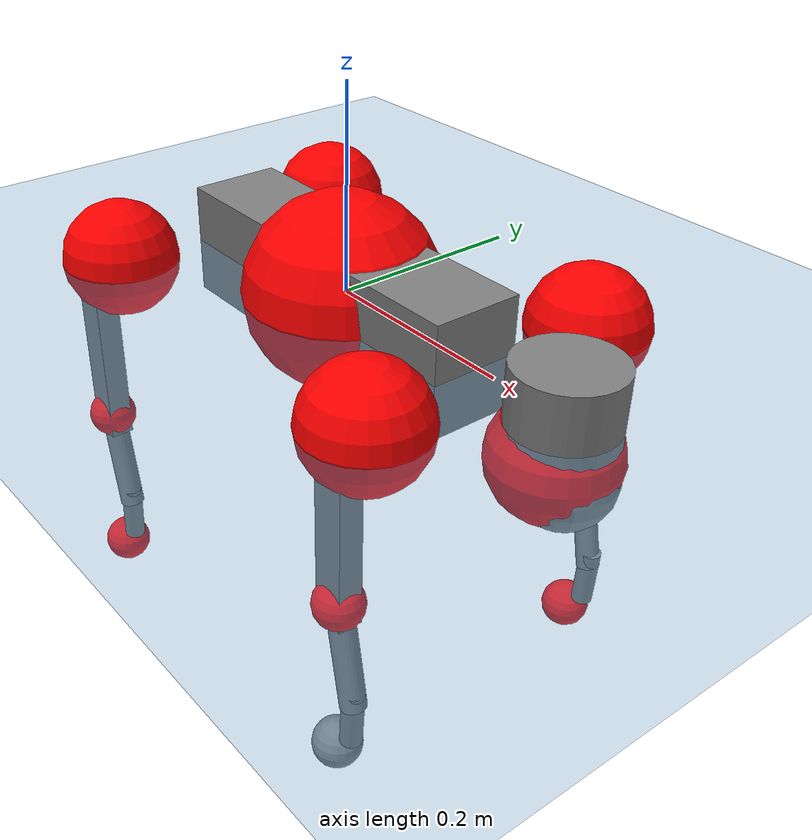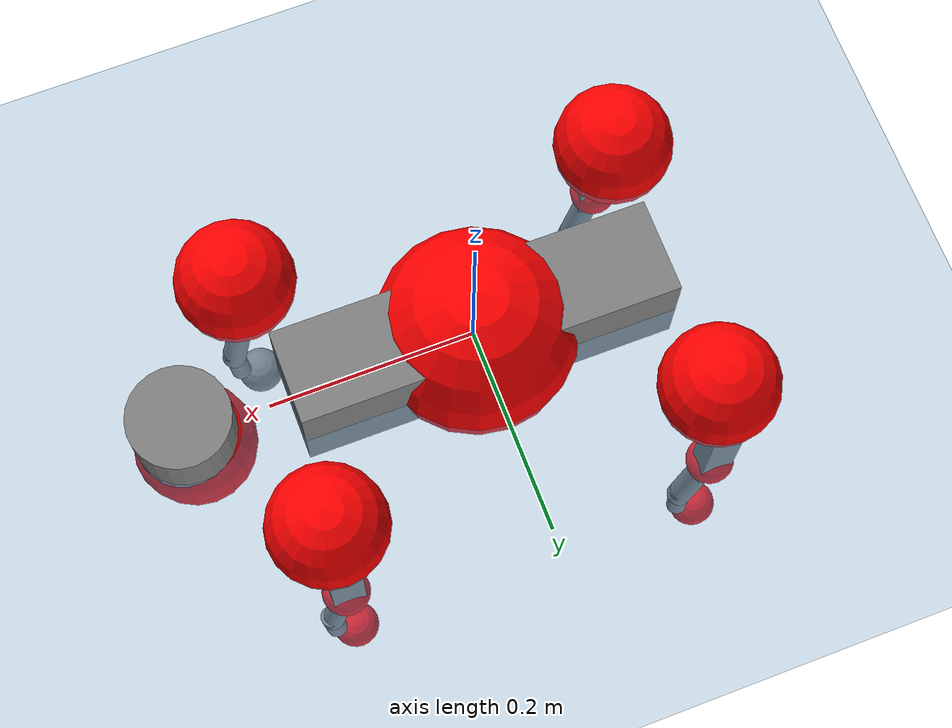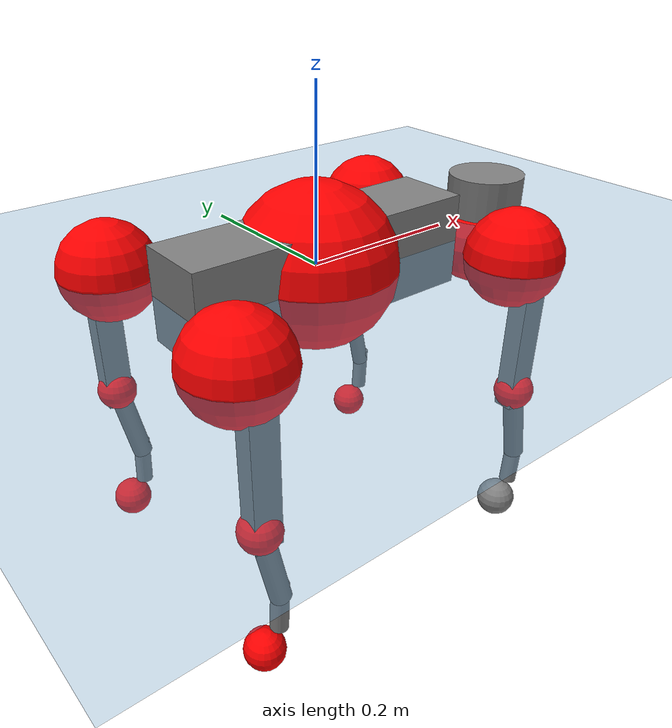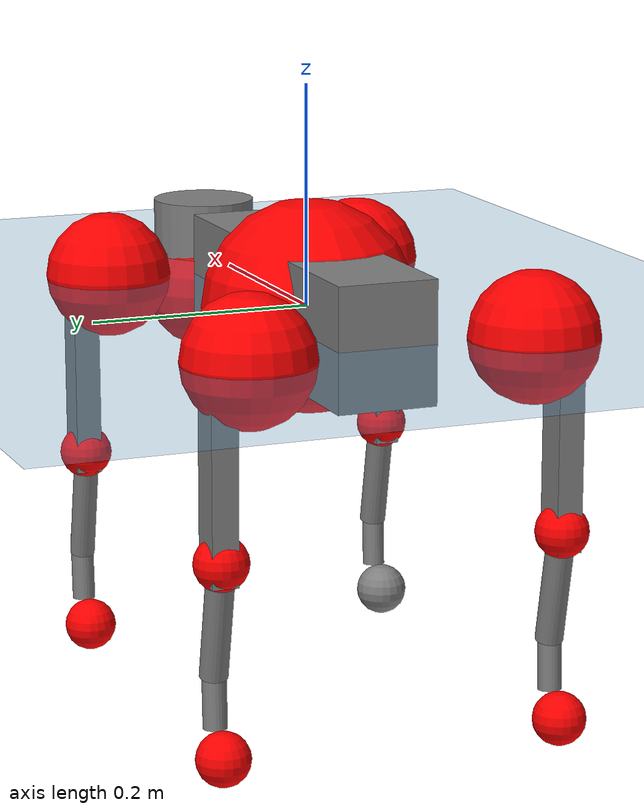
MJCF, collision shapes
<mujoco model="go2">
  <compiler angle="radian" assetdir="assets" balanceinertia="true" inertiafromgeom="false"/>

  <option timestep="0.005" density="1.2" viscosity="2e-05"/>

  <size nkey="1"/>

  <visual>
    <quality shadowsize="8192"/>
    <map shadowclip="0.5"/>
  </visual>

  <default>
    <default class="/">
      <geom contype="0" conaffinity="0" group="1" solref="-1000 -80"/>
      <site size="0.01 0.005 0.005" group="5"/>
      <general forcelimited="true" biastype="affine" gainprm="20" biasprm="0 -20 -0.5"/>
      <default class="go2">
        <joint armature="0.01" damping="0.01" frictionloss="0.2"/>
        <geom condim="1" margin="0.001"/>
        <default class="visual">
          <geom type="mesh" group="2"/>
        </default>
        <default class="collision">
          <geom group="3"/>
          <default class="foot">
            <geom size="0.022 0 0" condim="6" priority="1" friction="0.8 0.02 0.01" solimp="0.015 1 0.022"/>
          </default>
        </default>
        <default class="reward_collision_sphere">
          <geom group="5" rgba="1 0 0 1"/>
        </default>
      </default>
    </default>
  </default>

  <asset>
    <texture type="skybox" colorspace="auto" name="//unnamed_texture_0" builtin="gradient" rgb1="0.95 0.95 0.95" rgb2="0.95 0.95 0.95" width="100" height="600"/>
    <texture type="2d" colorspace="auto" name="texplane" builtin="checker" rgb1="0.345 0.575 0.748" rgb2="0.345 0.575 0.748" markrgb="1 1 1" width="512" height="512"/>
    <material name="MatPlane" class="/" texture="texplane" texuniform="true" texrepeat="2 2" specular="0.9"/>
    <material name="metal" class="/" rgba="0.9 0.95 0.95 1"/>
    <material name="black" class="/" rgba="0 0 0 1"/>
    <material name="white" class="/"/>
    <material name="gray" class="/" rgba="0.671705 0.692426 0.77427 1"/>
    <mesh name="base_0" class="/" file="base_0.obj"/>
    <mesh name="base_1" class="/" file="base_1.obj"/>
    <mesh name="base_2" class="/" file="base_2.obj"/>
    <mesh name="base_3" class="/" file="base_3.obj"/>
    <mesh name="base_4" class="/" file="base_4.obj"/>
    <mesh name="hip_0" class="/" file="hip_0.obj"/>
    <mesh name="hip_1" class="/" file="hip_1.obj"/>
    <mesh name="thigh_0" class="/" file="thigh_0.obj"/>
    <mesh name="thigh_1" class="/" file="thigh_1.obj"/>
    <mesh name="thigh_mirror_0" class="/" file="thigh_mirror_0.obj"/>
    <mesh name="thigh_mirror_1" class="/" file="thigh_mirror_1.obj"/>
    <mesh name="calf_0" class="/" file="calf_0.obj"/>
    <mesh name="calf_1" class="/" file="calf_1.obj"/>
    <mesh name="calf_mirror_0" class="/" file="calf_mirror_0.obj"/>
    <mesh name="calf_mirror_1" class="/" file="calf_mirror_1.obj"/>
    <mesh name="foot" class="/" file="foot.obj"/>
  </asset>

  <worldbody>
    <geom name="floor" class="/" size="100 100 0.125" type="plane" group="0" material="MatPlane"/>
    <light name="toplight_shadow" class="/" pos="0 0 5" dir="0.0990148 0.0990148 -0.990148" type="directional" ambient="0.04 0.04 0.04" diffuse="0.55 0.55 0.55" specular="0.12 0.12 0.12"/>
    <light name="toplight_fill" class="/" pos="0 0 5" dir="0.0990148 0.0990148 -0.990148" type="directional" castshadow="false" ambient="0.04 0.04 0.04" diffuse="0.3 0.3 0.3" specular="0.08 0.08 0.08"/>
    <body name="trunk" childclass="go2" pos="-0.00270798 -0.00169693 0.000528753" quat="0.999999 -0.00035421 -0.000389365 -0.00102651">
      <inertial pos="0.0180654 -0.000297631 -0.00473527" quat="-0.00118508 0.711539 -0.000797359 0.702645" mass="6.19782" diaginertia="0.103983 0.162431 0.00871155"/>
      <joint name="//unnamed_joint_0" type="free" armature="0" damping="0" frictionloss="0"/>
      <geom name="//unnamed_geom_1" class="visual" material="black" mesh="base_0"/>
      <geom name="//unnamed_geom_2" class="visual" material="black" mesh="base_1"/>
      <geom name="//unnamed_geom_3" class="visual" material="black" mesh="base_2"/>
      <geom name="//unnamed_geom_4" class="visual" material="white" mesh="base_3"/>
      <geom name="//unnamed_geom_5" class="visual" material="gray" mesh="base_4"/>
      <geom name="trunk_1" class="collision" size="0.182301 0.0453087 0.0552426" type="box"/>
      <geom name="trunk_2" class="collision" size="0.0484585 0.0436126" pos="0.282832 0 0.00808943" type="cylinder"/>
      <geom name="trunk_3" class="collision" size="0.0455509" pos="0.290771 0 -0.0485366"/>
      <geom name="//unnamed_geom_9" class="reward_collision_sphere" size="0.0969169"/>
      <geom name="//unnamed_geom_10" class="reward_collision_sphere" size="0.0581501" pos="0.27787 0 -0.0364025"/>
      <site name="imu" pos="-0.0232027 -0.00351114 0.0395208" size="0.00969169"/>
      <camera name="track" pos="0 -2.21234 0" quat="0.707107 0.707107 0 0" mode="trackcom"/>
      <camera name="ego_camera" pos="0.309626 0 0.0364025" quat="-0.5 -0.5 0.5 0.5"/>
      <body name="FL_hip" pos="0.190468 0.0503454 0.00260168" quat="0.999999 -0.0010053 -0.000727449 -0.000189942">
        <inertial pos="-0.00801358 0.00213979 -0.000726695" quat="0.495721 0.500412 0.504077 0.499754" mass="0.639563" diaginertia="0.000885101 0.000984391 0.000172872"/>
        <joint name="FL_hip_joint" pos="0 0 0" axis="0.99999 0.00134416 0.00434239" stiffness="0.00371498" range="-1.05699 0.996856" armature="0.0106944" damping="0" frictionloss="0.190848"/>
        <geom name="//unnamed_geom_11" class="visual" material="metal" mesh="hip_0"/>
        <geom name="//unnamed_geom_12" class="visual" material="gray" mesh="hip_1"/>
        <geom name="//unnamed_geom_13" class="collision" size="0.0445818 0.0193834" pos="0 0.0884937 0" quat="0.707107 0.707107 0 0" type="cylinder"/>
        <geom name="//unnamed_geom_14" class="reward_collision_sphere" size="0.0581501" pos="0 0.077432 0"/>
        <body name="FL_thigh" pos="2.25541e-05 0.104705 0.00245222" quat="1 -0.000299742 0.000192436 0.000301588">
          <inertial pos="-0.00104704 -0.0246026 -0.0237964" quat="0.829839 0.0828296 -0.0209082 0.551425" mass="1.05832" diaginertia="0.00568993 0.00950639 0.000305334"/>
          <joint name="FL_thigh_joint" pos="0 0 0" axis="-0.00457945 0.999979 0.00450451" stiffness="0.013312" range="-1.61353 3.53665" armature="0.0107013" damping="0" frictionloss="0.196005"/>
          <geom name="//unnamed_geom_15" class="visual" material="metal" mesh="thigh_0"/>
          <geom name="//unnamed_geom_16" class="visual" material="gray" mesh="thigh_1"/>
          <geom name="//unnamed_geom_17" class="collision" size="0.103216 0.0118723 0.0164759" pos="0 0 -0.0861525" quat="0.707107 0 0.707107 0" type="box"/>
          <body name="FL_calf" pos="0.000580216 -0.00166047 -0.172886" quat="1 -0.000575834 0.000156177 -8.31352e-05">
            <inertial pos="0.00721481 0.000152779 -0.116164" quat="0.702124 0.00201184 -7.05023e-05 0.712052" mass="0.217167" diaginertia="0.00145248 0.00243744 1.80999e-05"/>
            <joint name="FL_calf_joint" pos="0 0 0" axis="0.00723859 0.999968 0.00346007" range="-2.72171 -0.884445" armature="0.00935326" damping="0" frictionloss="0.198091"/>
            <geom name="//unnamed_geom_18" class="visual" material="gray" mesh="calf_0"/>
            <geom name="//unnamed_geom_19" class="visual" material="black" mesh="calf_1"/>
            <geom name="FL_calf0" class="collision" size="0.01163 0.0581501" pos="0.00793914 0 -0.0485366" quat="0.994493 0 -0.104807 0" type="cylinder"/>
            <geom name="//unnamed_geom_21" class="collision" size="0.0106609 0.031498" pos="0.0198478 0 -0.119724" quat="0.999688 0 0.0249974 0" type="cylinder"/>
            <geom name="//unnamed_geom_22" class="visual" pos="0 0 -0.172305" quat="1 0 0 0" material="black" mesh="foot"/>
            <geom name="FL_foot" class="foot" size="0.0161415" pos="-0.00198478 0 -0.172305"/>
            <geom name="//unnamed_geom_24" class="reward_collision_sphere" size="0.0242292"/>
            <geom name="//unnamed_geom_25" class="reward_collision_sphere" size="0.0242292" pos="-0.00198478 0 -0.172305"/>
            <site name="FL_foot" class="foot" pos="-0.00198478 0 -0.172305" size="0.00969169"/>
          </body>
        </body>
      </body>
      <body name="FR_hip" pos="0.193135 -0.0486436 -0.000265863" quat="1 -0.000218101 -6.28303e-06 0.000286254">
        <inertial pos="-0.00281335 -0.00314779 -0.000558588" quat="0.496713 0.506076 0.501217 0.495928" mass="0.64975" diaginertia="0.000874849 0.00102029 0.000167079"/>
        <joint name="FR_hip_joint" pos="0 0 0" axis="1 0.000463984 -0.000293866" range="-1.03311 1.04598" armature="0.00838775" damping="0.0172681" frictionloss="0.220193"/>
        <geom name="//unnamed_geom_26" class="visual" pos="0 2.58933e-09 1.11062e-07" quat="4.63268e-05 1 0 0" material="metal" mesh="hip_0"/>
        <geom name="//unnamed_geom_27" class="visual" pos="0 4.19761e-09 -2.74698e-07" quat="4.63268e-05 1 0 0" material="gray" mesh="hip_1"/>
        <geom name="//unnamed_geom_28" class="collision" size="0.0445818 0.0193834" pos="0 -0.0884937 0" quat="0.707107 0.707107 0 0" type="cylinder"/>
        <geom name="//unnamed_geom_29" class="reward_collision_sphere" size="0.0581501" pos="0 -0.077432 0"/>
        <body name="FR_thigh" pos="0.000884817 -0.104108 0.00307884" quat="0.999999 -4.78748e-05 0.00113085 -0.000758975">
          <inertial pos="-0.00529067 0.0220973 -0.0253585" quat="0.5509 -0.0182346 0.0850422 0.830027" mass="1.02288" diaginertia="0.00575883 0.00978607 0.000298388"/>
          <joint name="FR_thigh_joint" pos="0 0 0" axis="-0.000902855 -0.999999 0.000618041" range="-3.47058 1.5789" armature="0.00967386" damping="0.0172935" frictionloss="0.191334"/>
          <geom name="//unnamed_geom_30" class="visual" material="metal" mesh="thigh_mirror_0"/>
          <geom name="//unnamed_geom_31" class="visual" material="gray" mesh="thigh_mirror_1"/>
          <geom name="//unnamed_geom_32" class="collision" size="0.103216 0.0118723 0.0164759" pos="0 0 -0.0861525" quat="0.707107 0 0.707107 0" type="box"/>
          <body name="FR_calf" pos="0.00118544 -0.000795401 -0.171715" quat="1 5.14813e-05 3.59382e-05 1.66247e-07">
            <inertial pos="0.00674598 0.000631785 -0.113648" quat="0.702023 -0.00479387 0.00202121 0.712135" mass="0.2232" diaginertia="0.00152253 0.00243836 1.90849e-05"/>
            <joint name="FR_calf_joint" pos="0 0 0" axis="-0.0106862 -0.999943 -0.00064182" range="0.840355 2.71521" armature="0.00992394" damping="0.0139805" frictionloss="0.183582"/>
            <geom name="//unnamed_geom_33" class="visual" material="gray" mesh="calf_mirror_0"/>
            <geom name="//unnamed_geom_34" class="visual" material="black" mesh="calf_mirror_1"/>
            <geom name="FR_calf0" class="collision" size="0.0125992 0.0581501" pos="0.00992392 0 -0.0485366" quat="0.995004 0 -0.0998334 0" type="cylinder"/>
            <geom name="//unnamed_geom_36" class="collision" size="0.0106609 0.031498" pos="0.0198478 0 -0.119724" quat="0.999688 0 0.0249974 0" type="cylinder"/>
            <geom name="//unnamed_geom_37" class="visual" pos="0 0 -0.172305" quat="1 0 0 0" material="black" mesh="foot"/>
            <geom name="FR_foot" class="foot" size="0.0243192" pos="-0.00198478 0 -0.172305"/>
            <geom name="//unnamed_geom_39" class="reward_collision_sphere" size="0.0242292"/>
            <geom name="//unnamed_geom_40" class="reward_collision_sphere" size="0.0242292" pos="-0.00198478 0 -0.172305"/>
            <site name="FR_foot" class="foot" pos="-0.00198478 0 -0.172305" size="0.00969169"/>
          </body>
        </body>
      </body>
      <body name="RL_hip" pos="-0.191431 0.050998 0.00114989" quat="0.999999 -0.000453842 -0.000302499 0.00110862">
        <inertial pos="0.00817434 0.00284634 -0.000541159" quat="0.505286 0.498318 0.497424 0.498934" mass="0.613445" diaginertia="0.000858096 0.00101758 0.000169654"/>
        <joint name="RL_hip_joint" pos="0 0 0" axis="-0.999893 -0.0142604 0.00324462" stiffness="0.00555633" range="-1.02752 1.03857" armature="0.00968303" damping="0.00775089" frictionloss="0.188069"/>
        <geom name="//unnamed_geom_41" class="visual" pos="-1.59813e-09 0 -3.1327e-07" quat="4.63268e-05 0 1 0" material="metal" mesh="hip_0"/>
        <geom name="//unnamed_geom_42" class="visual" pos="-2.59076e-09 0 -2.77826e-07" quat="4.63268e-05 0 1 0" material="gray" mesh="hip_1"/>
        <geom name="//unnamed_geom_43" class="collision" size="0.0445818 0.0193834" pos="0 0.0884937 0" quat="0.707107 0.707107 0 0" type="cylinder"/>
        <geom name="//unnamed_geom_44" class="reward_collision_sphere" size="0.0581501" pos="0 0.077432 0"/>
        <body name="RL_thigh" pos="-0.0024331 0.105472 0.00160102" quat="0.999999 0.0011844 0.000222466 -0.000505922">
          <inertial pos="-0.00361903 -0.0236994 -0.0258009" quat="0.8318 0.0959709 -0.0176838 0.54643" mass="1.01704" diaginertia="0.00565358 0.00941307 0.000301181"/>
          <joint name="RL_thigh_joint" pos="0 0 0" axis="-0.00240019 0.999962 -0.00833089" stiffness="0.00282118" range="-0.514479 4.52561" armature="0.00903858" damping="0" frictionloss="0.201388"/>
          <geom name="//unnamed_geom_45" class="visual" material="metal" mesh="thigh_0"/>
          <geom name="//unnamed_geom_46" class="visual" material="gray" mesh="thigh_1"/>
          <geom name="//unnamed_geom_47" class="collision" size="0.103216 0.0118723 0.0164759" pos="0 0 -0.0861525" quat="0.707107 0 0.707107 0" type="box"/>
          <body name="RL_calf" pos="0.000210308 -0.00211041 -0.171982" quat="1 -6.25413e-06 -8.26846e-05 -4.41193e-05">
            <inertial pos="0.0062455 -0.000407027 -0.113541" quat="0.710146 0.00144934 -0.00471495 0.704037" mass="0.218408" diaginertia="0.00143462 0.00243069 1.82189e-05"/>
            <joint name="RL_calf_joint" pos="0 0 0" axis="0.00135487 0.999999 0.000960192" range="-2.70046 -0.83656" armature="0.0097881" damping="0" frictionloss="0.190085"/>
            <geom name="//unnamed_geom_48" class="visual" material="gray" mesh="calf_0"/>
            <geom name="//unnamed_geom_49" class="visual" material="black" mesh="calf_1"/>
            <geom name="RL_calf0" class="collision" size="0.0125992 0.0581501" pos="0.00992392 0 -0.0485366" quat="0.995004 0 -0.0998334 0" type="cylinder"/>
            <geom name="//unnamed_geom_51" class="collision" size="0.0106609 0.031498" pos="0.0198478 0 -0.119724" quat="0.999688 0 0.0249974 0" type="cylinder"/>
            <geom name="//unnamed_geom_52" class="visual" pos="0 0 -0.172305" quat="1 0 0 0" material="black" mesh="foot"/>
            <geom name="RL_foot" class="foot" size="0.02071" pos="-0.00198478 0 -0.172305"/>
            <geom name="//unnamed_geom_54" class="reward_collision_sphere" size="0.0242292"/>
            <geom name="//unnamed_geom_55" class="reward_collision_sphere" size="0.0242292" pos="-0.00198478 0 -0.172305"/>
            <site name="RL_foot" class="foot" pos="-0.00198478 0 -0.172305" size="0.00969169"/>
          </body>
        </body>
      </body>
      <body name="RR_hip" pos="-0.191405 -0.0540384 0.000180678" quat="1 -0.000798124 -0.000109589 -0.000328604">
        <inertial pos="0.00503371 0.000275563 7.34043e-05" quat="0.493648 0.489378 0.503821 0.512821" mass="0.614178" diaginertia="0.00085761 0.000999479 0.000166763"/>
        <joint name="RR_hip_joint" pos="0 0 0" axis="-0.999985 -0.00513137 0.00205904" stiffness="0.00635739" range="-1.06173 1.05273" armature="0.0111277" damping="0.0193542" frictionloss="0.169116"/>
        <geom name="//unnamed_geom_56" class="visual" pos="1.60207e-09 2.58933e-09 -4.24332e-07" quat="2.14617e-09 4.63268e-05 4.63268e-05 -1" material="metal" mesh="hip_0"/>
        <geom name="//unnamed_geom_57" class="visual" pos="2.58101e-09 4.19761e-09 -3.12787e-09" quat="2.14617e-09 4.63268e-05 4.63268e-05 -1" material="gray" mesh="hip_1"/>
        <geom name="//unnamed_geom_58" class="collision" size="0.0445818 0.0193834" pos="0 -0.0884937 0" quat="0.707107 0.707107 0 0" type="cylinder"/>
        <geom name="//unnamed_geom_59" class="reward_collision_sphere" size="0.0581501" pos="0 -0.077432 0"/>
        <body name="RR_thigh" pos="-0.000996809 -0.106414 -0.00301999" quat="1 0.000291509 -0.000138605 0.000398793">
          <inertial pos="-0.00339303 0.0245491 -0.0260808" quat="0.551695 -0.0203567 0.0863769 0.829311" mass="1.05542" diaginertia="0.00579885 0.009793 0.000296742"/>
          <joint name="RR_thigh_joint" pos="0 0 0" axis="-0.00187994 -0.999993 -0.00308769" range="-4.59045 0.54736" armature="0.00997382" damping="0.0208695" frictionloss="0.204113"/>
          <geom name="//unnamed_geom_60" class="visual" material="metal" mesh="thigh_mirror_0"/>
          <geom name="//unnamed_geom_61" class="visual" material="gray" mesh="thigh_mirror_1"/>
          <geom name="//unnamed_geom_62" class="collision" size="0.103216 0.0118723 0.0164759" pos="0 0 -0.0861525" quat="0.707107 0 0.707107 0" type="box"/>
          <body name="RR_calf" pos="-0.00259194 0.000507081 -0.172174" quat="1 8.69197e-06 -0.000303391 -0.000181436">
            <inertial pos="0.00865913 0.00115625 -0.114018" quat="0.70235 -0.00535924 0.00346002 0.711804" mass="0.219372" diaginertia="0.00139697 0.0022877 1.81148e-05"/>
            <joint name="RR_calf_joint" pos="0 0 0" axis="-0.00647933 -0.999955 0.00698913" range="0.876204 2.77651" armature="0.00854841" damping="0.0117345" frictionloss="0.183457"/>
            <geom name="//unnamed_geom_63" class="visual" material="gray" mesh="calf_mirror_0"/>
            <geom name="//unnamed_geom_64" class="visual" material="black" mesh="calf_mirror_1"/>
            <geom name="RR_calf0" class="collision" size="0.0125992 0.0581501" pos="0.00992392 0 -0.0485366" quat="0.995004 0 -0.0998334 0" type="cylinder"/>
            <geom name="//unnamed_geom_66" class="collision" size="0.0106609 0.031498" pos="0.0198478 0 -0.119724" quat="0.999688 0 0.0249974 0" type="cylinder"/>
            <geom name="//unnamed_geom_67" class="visual" pos="0 0 -0.172305" quat="1 0 0 0" material="black" mesh="foot"/>
            <geom name="RR_foot" class="foot" size="0.0230876" pos="-0.00198478 0 -0.172305"/>
            <geom name="//unnamed_geom_69" class="reward_collision_sphere" size="0.0242292"/>
            <geom name="//unnamed_geom_70" class="reward_collision_sphere" size="0.0242292" pos="-0.00198478 0 -0.172305"/>
            <site name="RR_foot" class="foot" pos="-0.00198478 0 -0.172305" size="0.00969169"/>
          </body>
        </body>
      </body>
    </body>
  </worldbody>

  <contact>
    <pair class="/" geom1="floor" geom2="FL_foot" name="//unnamed_contact_0"/>
    <pair class="/" geom1="floor" geom2="FR_foot" name="//unnamed_contact_1"/>
    <pair class="/" geom1="floor" geom2="RL_foot" name="//unnamed_contact_2"/>
    <pair class="/" geom1="floor" geom2="RR_foot" name="//unnamed_contact_3"/>
  </contact>

  <actuator>
    <general name="FL_hip" class="/" joint="FL_hip_joint" forcerange="-22.5918 22.5918" gainprm="19.4133" biasprm="0 -19.4133 -0.484778"/>
    <general name="FL_thigh" class="/" joint="FL_thigh_joint" forcerange="-22.6425 22.6425" gainprm="19.4133" biasprm="0 -19.4133 -0.484778"/>
    <general name="FL_calf" class="/" joint="FL_calf_joint" forcerange="-43.9587 43.9587" gainprm="19.4133" biasprm="0 -19.4133 -0.484778"/>
    <general name="FR_hip" class="/" joint="FR_hip_joint" forcerange="-25.1865 25.1865" gainprm="19.4133" biasprm="0 -19.4133 -0.484778"/>
    <general name="FR_thigh" class="/" joint="FR_thigh_joint" forcerange="-22.666 22.666" gainprm="19.4133" biasprm="0 -19.4133 -0.484778"/>
    <general name="FR_calf" class="/" joint="FR_calf_joint" forcerange="-40.4062 40.4062" gainprm="19.4133" biasprm="0 -19.4133 -0.484778"/>
    <general name="RL_hip" class="/" joint="RL_hip_joint" forcerange="-23.0486 23.0486" gainprm="19.4133" biasprm="0 -19.4133 -0.484778"/>
    <general name="RL_thigh" class="/" joint="RL_thigh_joint" forcerange="-22.963 22.963" gainprm="19.4133" biasprm="0 -19.4133 -0.484778"/>
    <general name="RL_calf" class="/" joint="RL_calf_joint" forcerange="-43.6482 43.6482" gainprm="19.4133" biasprm="0 -19.4133 -0.484778"/>
    <general name="RR_hip" class="/" joint="RR_hip_joint" forcerange="-22.692 22.692" gainprm="19.4133" biasprm="0 -19.4133 -0.484778"/>
    <general name="RR_thigh" class="/" joint="RR_thigh_joint" forcerange="-23.8203 23.8203" gainprm="19.4133" biasprm="0 -19.4133 -0.484778"/>
    <general name="RR_calf" class="/" joint="RR_calf_joint" forcerange="-48.595 48.595" gainprm="19.4133" biasprm="0 -19.4133 -0.484778"/>
  </actuator>

  <sensor>
    <gyro site="imu" name="imu_angular_velocity"/>
    <velocimeter site="imu" name="imu_linear_velocity"/>
    <framelinvel objtype="site" objname="FL_foot" name="FL_foot_global_linear_velocity"/>
    <framelinvel objtype="site" objname="FR_foot" name="FR_foot_global_linear_velocity"/>
    <framelinvel objtype="site" objname="RL_foot" name="RL_foot_global_linear_velocity"/>
    <framelinvel objtype="site" objname="RR_foot" name="RR_foot_global_linear_velocity"/>
  </sensor>

  <keyframe>
    <key name="home" qpos="0 0 0.325 1 0 0 0 0.1 0.8 -1.5 -0.1 -0.8 1.5 -0.1 0.8 -1.5 0.1 -0.8 1.5"/>
  </keyframe>
</mujoco>
